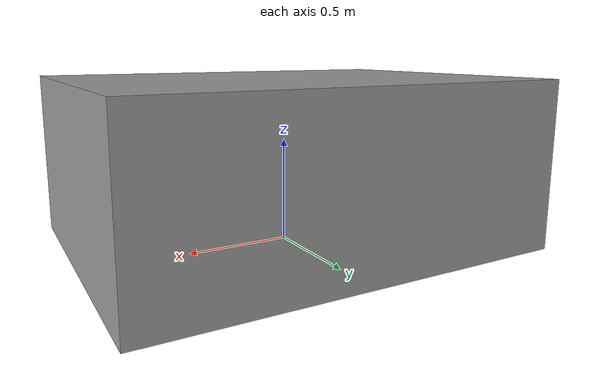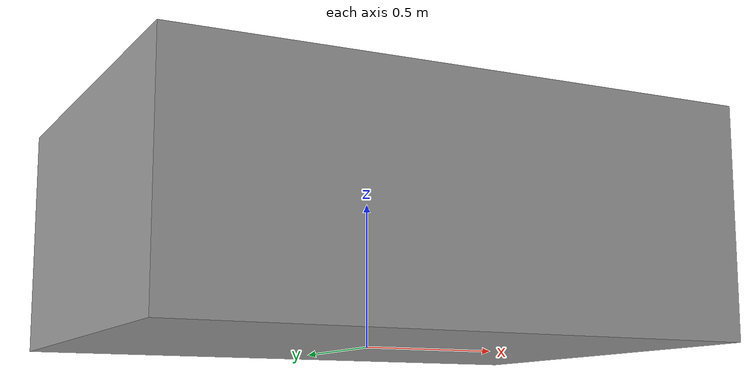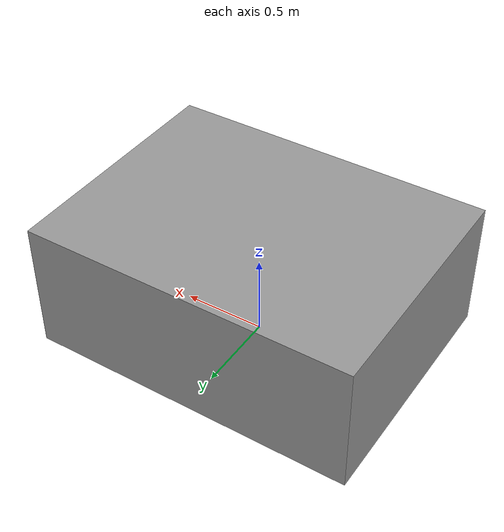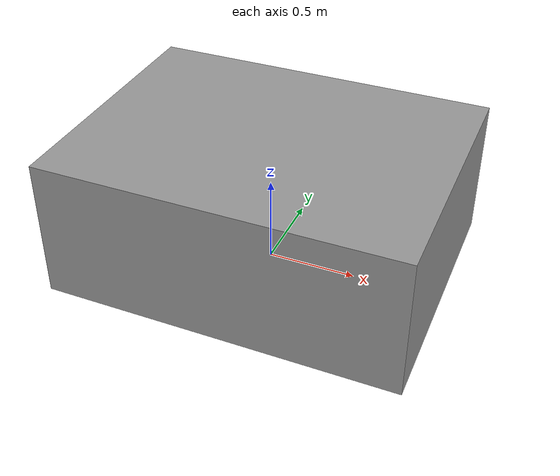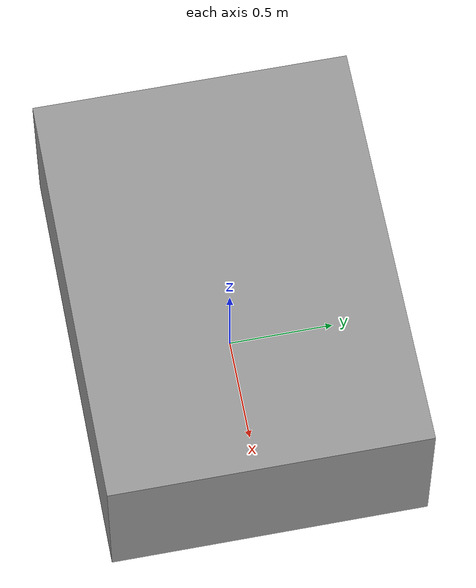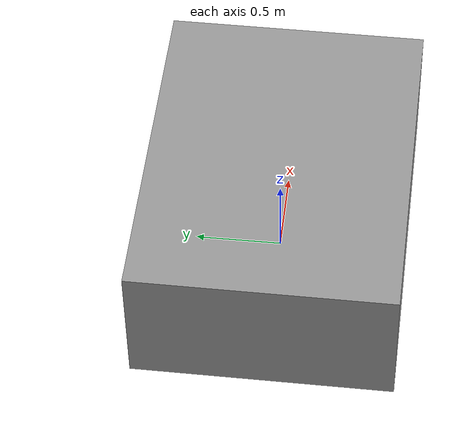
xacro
<?xml version="1.0"?>
<robot xmlns:xacro="http://wiki.ros.org/xacro" name="table">
    <link name="table_link">
        <!-- 惯性属性：Ignition/Gazebo 必须 -->
        <inertial>
            <origin xyz="0 0 0.4" rpy="0 0 0"/>
            <mass value="50.0"/>
            <inertia ixx="10.0" ixy="0" ixz="0" iyy="10.0" iyz="0" izz="10.0"/>
        </inertial>
        <visual>
            <origin xyz="0 0 0.4"/>
            <geometry>
            <box size="2 1.5 0.8"/>
            </geometry>
            <material name="grey"><color rgba="0.6 0.6 0.6 1.0"/></material>
        </visual>
        <collision>
            <origin xyz="0 0 0.4"/>
            <geometry>
            <box size="2 1.5 0.8"/>
            </geometry>
        </collision>
    </link>

    <!-- Joint定义移到environment.xacro中，避免重复 -->
</robot>
